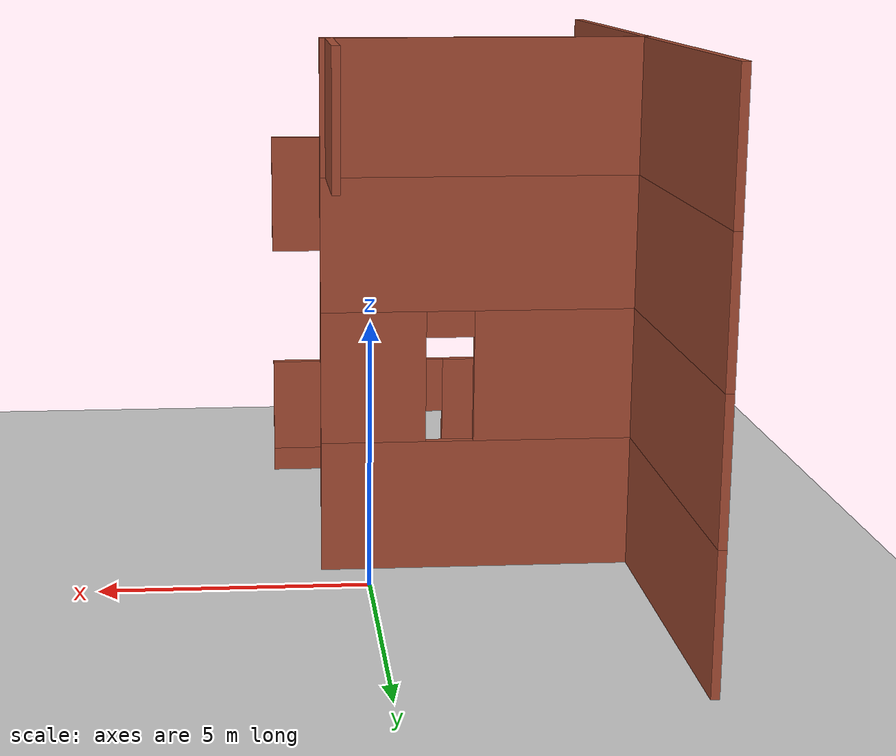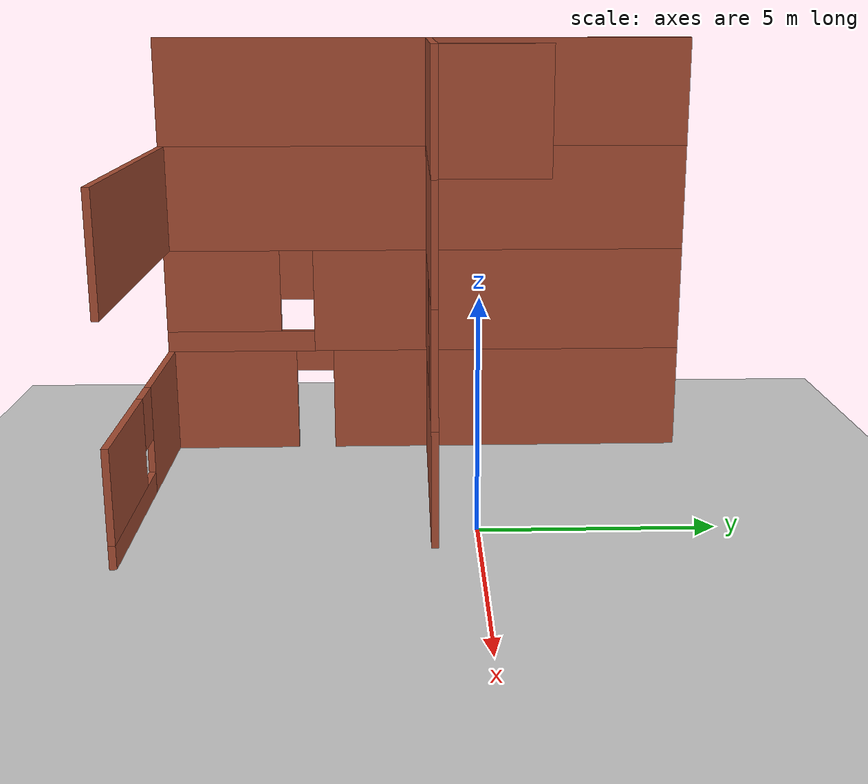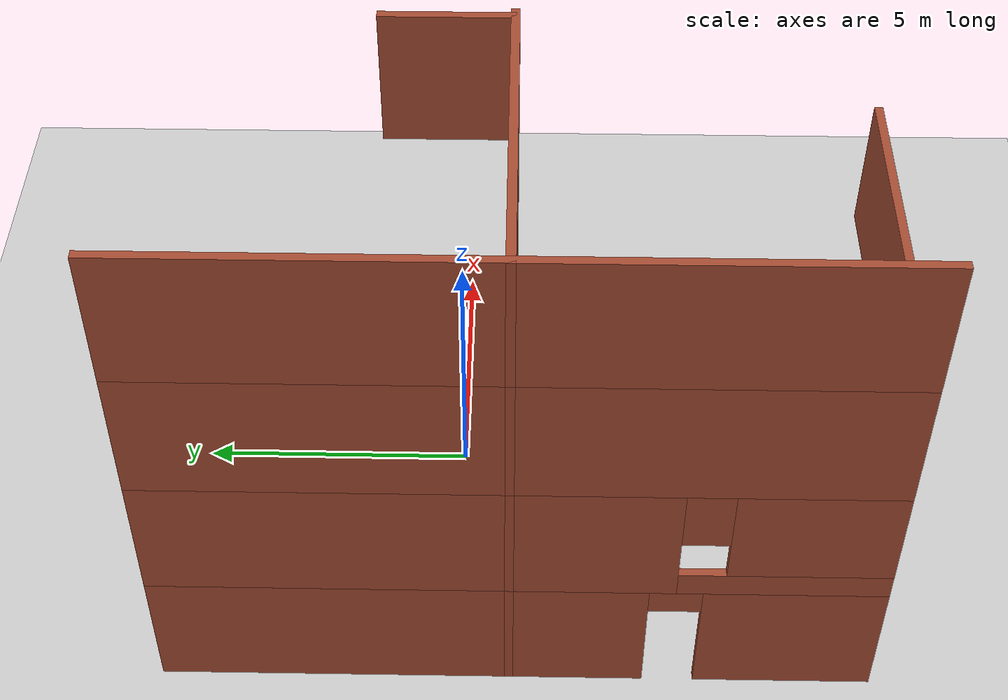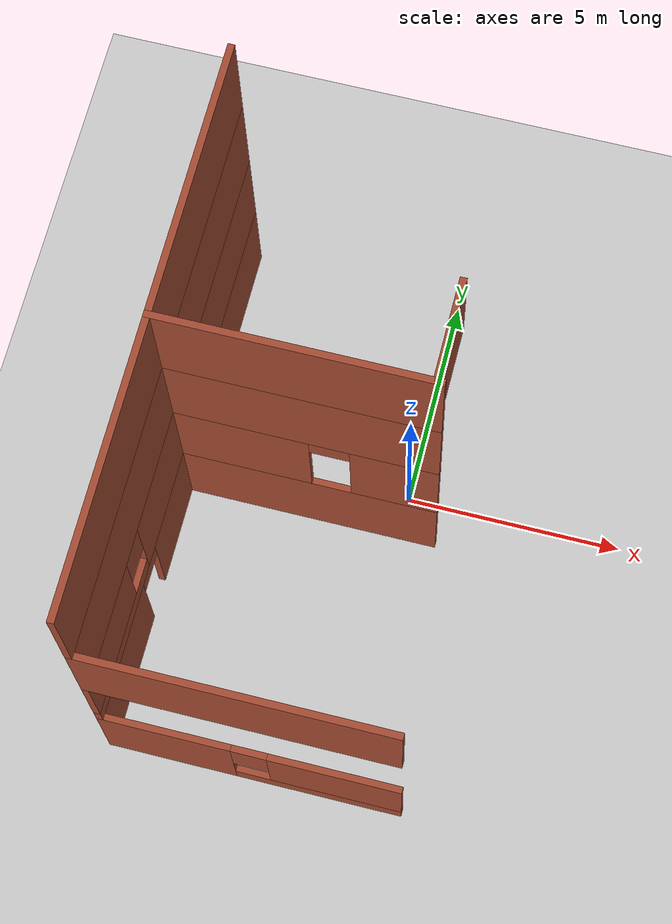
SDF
<sdf version="1.7">
 <world name="default">
  <model name="ground_plane">
   <static>1</static>
   <link name="link">
    <collision name="collision">
     <geometry><plane><normal>0 0 1</normal><size>300 300</size></plane></geometry>
     <surface>
      <contact><collide_bitmask>65535</collide_bitmask></contact>
      <friction><ode><mu>100</mu><mu2>50</mu2></ode></friction>
     </surface>
    </collision>
    <visual name="visual">
     <cast_shadows>0</cast_shadows>
     <geometry><plane><normal>0 0 1</normal><size>300 300</size></plane></geometry>
     <material>
      <script><uri>file://media/materials/scripts/gazebo.material</uri><name>Gazebo/Grey</name></script>
     </material>
    </visual>
   </link>
  </model>
  <model name="Drone_House">
   <pose>2.65602 -2.34694 0 0 -0 0</pose>
   <link name="Wall_106">
    <collision name="Wall_106_Collision">
     <geometry><box><size>12.5 0.15 2.5</size></box></geometry>
     <pose>0 0 1.25 0 -0 0</pose>
    </collision>
    <visual name="Wall_106_Visual">
     <pose>0 0 1.25 0 -0 0</pose>
     <geometry><box><size>12.5 0.15 2.5</size></box></geometry>
     <material>
      <script><uri>file://media/materials/scripts/gazebo.material</uri><name>Gazebo/Bricks</name></script>
      <ambient>1 1 1 1</ambient>
     </material>
     <meta><layer>3</layer></meta>
    </visual>
    <pose>-7.72394 1.325 7.5 0 -0 -1.5708</pose>
   </link>
   <link name="Wall_108">
    <collision name="Wall_108_Collision">
     <geometry><box><size>6 0.15 2.5</size></box></geometry>
     <pose>0 0 1.25 0 -0 0</pose>
    </collision>
    <visual name="Wall_108_Visual">
     <pose>0 0 1.25 0 -0 0</pose>
     <geometry><box><size>6 0.15 2.5</size></box></geometry>
     <material>
      <script><uri>file://media/materials/scripts/gazebo.material</uri><name>Gazebo/Bricks</name></script>
      <ambient>1 1 1 1</ambient>
     </material>
     <meta><layer>3</layer></meta>
    </visual>
    <pose>-4.80107 1.443 7.5 0 -0 0</pose>
   </link>
   <link name="Wall_115">
    <collision name="Wall_115_Collision">
     <geometry><box><size>2.25 0.15 2.5</size></box></geometry>
     <pose>0 0 1.25 0 -0 0</pose>
    </collision>
    <visual name="Wall_115_Visual">
     <pose>0 0 1.25 0 -0 0</pose>
     <geometry><box><size>2.25 0.15 2.5</size></box></geometry>
     <material>
      <script><uri>file://media/materials/scripts/gazebo.material</uri><name>Gazebo/Bricks</name></script>
      <ambient>1 1 1 1</ambient>
     </material>
     <meta><layer>3</layer></meta>
    </visual>
    <pose>-1.97394 2.55 7.5 0 -0 -1.5708</pose>
   </link>
   <link name="Wall_35">
    <pose>-7.72394 1.325 2.5 0 -0 -1.5708</pose>
    <visual name="Wall_35_Visual_0">
     <pose>-1.7824 0 1.25 0 -0 0</pose>
     <geometry><box><size>8.9352 0.15 2.5</size></box></geometry>
     <material>
      <script><uri>file://media/materials/scripts/gazebo.material</uri><name>Gazebo/Bricks</name></script>
      <ambient>1 1 1 1</ambient>
     </material>
     <meta><layer>1</layer></meta>
    </visual>
    <collision name="Wall_35_Collision_0">
     <geometry><box><size>8.9352 0.15 2.5</size></box></geometry>
     <pose>-1.7824 0 1.25 0 -0 0</pose>
    </collision>
    <visual name="Wall_35_Visual_1">
     <pose>4.4676 0 0.25 0 -0 0</pose>
     <geometry><box><size>3.5648 0.15 0.5</size></box></geometry>
     <material>
      <script><uri>file://media/materials/scripts/gazebo.material</uri><name>Gazebo/Bricks</name></script>
      <ambient>1 1 1 1</ambient>
     </material>
     <meta><layer>1</layer></meta>
    </visual>
    <collision name="Wall_35_Collision_1">
     <geometry><box><size>3.5648 0.15 0.5</size></box></geometry>
     <pose>4.4676 0 0.25 0 -0 0</pose>
    </collision>
    <visual name="Wall_35_Visual_2">
     <pose>4.8676 0 1.5 0 -0 0</pose>
     <geometry><box><size>2.7648 0.15 2</size></box></geometry>
     <material>
      <script><uri>file://media/materials/scripts/gazebo.material</uri><name>Gazebo/Bricks</name></script>
      <ambient>1 1 1 1</ambient>
     </material>
     <meta><layer>1</layer></meta>
    </visual>
    <collision name="Wall_35_Collision_2">
     <geometry><box><size>2.7648 0.15 2</size></box></geometry>
     <pose>4.8676 0 1.5 0 -0 0</pose>
    </collision>
    <visual name="Wall_35_Visual_3">
     <pose>3.0852 0 1.9 0 -0 0</pose>
     <geometry><box><size>0.8 0.15 1.2</size></box></geometry>
     <material>
      <script><uri>file://media/materials/scripts/gazebo.material</uri><name>Gazebo/Bricks</name></script>
      <ambient>1 1 1 1</ambient>
     </material>
     <meta><layer>1</layer></meta>
    </visual>
    <collision name="Wall_35_Collision_3">
     <geometry><box><size>0.8 0.15 1.2</size></box></geometry>
     <pose>3.0852 0 1.9 0 -0 0</pose>
    </collision>
   </link>
   <link name="Wall_37">
    <pose>-4.80107 1.443 2.5 0 -0 0</pose>
    <visual name="Wall_37_Visual_0">
     <pose>-1.43248 0 1.25 0 -0 0</pose>
     <geometry><box><size>3.13503 0.15 2.5</size></box></geometry>
     <material>
      <script><uri>file://media/materials/scripts/gazebo.material</uri><name>Gazebo/Bricks</name></script>
      <ambient>1 1 1 1</ambient>
     </material>
     <meta><layer>1</layer></meta>
    </visual>
    <collision name="Wall_37_Collision_0">
     <geometry><box><size>3.13503 0.15 2.5</size></box></geometry>
     <pose>-1.43248 0 1.25 0 -0 0</pose>
    </collision>
    <visual name="Wall_37_Visual_1">
     <pose>2.01752 0 1.25 0 -0 0</pose>
     <geometry><box><size>1.96497 0.15 2.5</size></box></geometry>
     <material>
      <script><uri>file://media/materials/scripts/gazebo.material</uri><name>Gazebo/Bricks</name></script>
      <ambient>1 1 1 1</ambient>
     </material>
     <meta><layer>1</layer></meta>
    </visual>
    <collision name="Wall_37_Collision_1">
     <geometry><box><size>1.96497 0.15 2.5</size></box></geometry>
     <pose>2.01752 0 1.25 0 -0 0</pose>
    </collision>
    <visual name="Wall_37_Visual_2">
     <pose>0.585032 0 2.25 0 -0 0</pose>
     <geometry><box><size>0.9 0.15 0.5</size></box></geometry>
     <material>
      <script><uri>file://media/materials/scripts/gazebo.material</uri><name>Gazebo/Bricks</name></script>
      <ambient>1 1 1 1</ambient>
     </material>
     <meta><layer>1</layer></meta>
    </visual>
    <collision name="Wall_37_Collision_2">
     <geometry><box><size>0.9 0.15 0.5</size></box></geometry>
     <pose>0.585032 0 2.25 0 -0 0</pose>
    </collision>
   </link>
   <link name="Wall_4">
    <pose>-7.72394 1.325 0 0 -0 -1.5708</pose>
    <visual name="Wall_4_Visual_0">
     <pose>-2.0069 0 1.25 0 -0 0</pose>
     <geometry><box><size>8.4862 0.15 2.5</size></box></geometry>
     <material>
      <script><uri>file://media/materials/scripts/gazebo.material</uri><name>Gazebo/Bricks</name></script>
      <ambient>1 1 1 1</ambient>
     </material>
     <meta><layer>0</layer></meta>
    </visual>
    <collision name="Wall_4_Collision_0">
     <geometry><box><size>8.4862 0.15 2.5</size></box></geometry>
     <pose>-2.0069 0 1.25 0 -0 0</pose>
    </collision>
    <visual name="Wall_4_Visual_1">
     <pose>4.6931 0 1.25 0 -0 0</pose>
     <geometry><box><size>3.1138 0.15 2.5</size></box></geometry>
     <material>
      <script><uri>file://media/materials/scripts/gazebo.material</uri><name>Gazebo/Bricks</name></script>
      <ambient>1 1 1 1</ambient>
     </material>
     <meta><layer>0</layer></meta>
    </visual>
    <collision name="Wall_4_Collision_1">
     <geometry><box><size>3.1138 0.15 2.5</size></box></geometry>
     <pose>4.6931 0 1.25 0 -0 0</pose>
    </collision>
    <visual name="Wall_4_Visual_2">
     <pose>2.6862 0 2.25 0 -0 0</pose>
     <geometry><box><size>0.9 0.15 0.5</size></box></geometry>
     <material>
      <script><uri>file://media/materials/scripts/gazebo.material</uri><name>Gazebo/Bricks</name></script>
      <ambient>1 1 1 1</ambient>
     </material>
     <meta><layer>0</layer></meta>
    </visual>
    <collision name="Wall_4_Collision_2">
     <geometry><box><size>0.9 0.15 0.5</size></box></geometry>
     <pose>2.6862 0 2.25 0 -0 0</pose>
    </collision>
   </link>
   <link name="Wall_5">
    <pose>-4.42394 -4.85 0 0 -0 0</pose>
    <visual name="Wall_5_Visual_0">
     <pose>-1.88995 0 1.25 0 -0 0</pose>
     <geometry><box><size>2.9701 0.15 2.5</size></box></geometry>
     <material>
      <script><uri>file://media/materials/scripts/gazebo.material</uri><name>Gazebo/Bricks</name></script>
      <ambient>1 1 1 1</ambient>
     </material>
     <meta><layer>0</layer></meta>
    </visual>
    <collision name="Wall_5_Collision_0">
     <geometry><box><size>2.9701 0.15 2.5</size></box></geometry>
     <pose>-1.88995 0 1.25 0 -0 0</pose>
    </collision>
    <visual name="Wall_5_Visual_1">
     <pose>1.48505 0 0.25 0 -0 0</pose>
     <geometry><box><size>3.7799 0.15 0.5</size></box></geometry>
     <material>
      <script><uri>file://media/materials/scripts/gazebo.material</uri><name>Gazebo/Bricks</name></script>
      <ambient>1 1 1 1</ambient>
     </material>
     <meta><layer>0</layer></meta>
    </visual>
    <collision name="Wall_5_Collision_1">
     <geometry><box><size>3.7799 0.15 0.5</size></box></geometry>
     <pose>1.48505 0 0.25 0 -0 0</pose>
    </collision>
    <visual name="Wall_5_Visual_2">
     <pose>1.88505 0 1.5 0 -0 0</pose>
     <geometry><box><size>2.9799 0.15 2</size></box></geometry>
     <material>
      <script><uri>file://media/materials/scripts/gazebo.material</uri><name>Gazebo/Bricks</name></script>
      <ambient>1 1 1 1</ambient>
     </material>
     <meta><layer>0</layer></meta>
    </visual>
    <collision name="Wall_5_Collision_2">
     <geometry><box><size>2.9799 0.15 2</size></box></geometry>
     <pose>1.88505 0 1.5 0 -0 0</pose>
    </collision>
    <visual name="Wall_5_Visual_3">
     <pose>-0.004899 0 1.9 0 -0 0</pose>
     <geometry><box><size>0.8 0.15 1.2</size></box></geometry>
     <material>
      <script><uri>file://media/materials/scripts/gazebo.material</uri><name>Gazebo/Bricks</name></script>
      <ambient>1 1 1 1</ambient>
     </material>
     <meta><layer>0</layer></meta>
    </visual>
    <collision name="Wall_5_Collision_3">
     <geometry><box><size>0.8 0.15 1.2</size></box></geometry>
     <pose>-0.004899 0 1.9 0 -0 0</pose>
    </collision>
   </link>
   <link name="Wall_7">
    <collision name="Wall_7_Collision">
     <geometry><box><size>6 0.15 2.5</size></box></geometry>
     <pose>0 0 1.25 0 -0 0</pose>
    </collision>
    <visual name="Wall_7_Visual">
     <pose>0 0 1.25 0 -0 0</pose>
     <geometry><box><size>6 0.15 2.5</size></box></geometry>
     <material>
      <script><uri>file://media/materials/scripts/gazebo.material</uri><name>Gazebo/Bricks</name></script>
      <ambient>1 1 1 1</ambient>
     </material>
     <meta><layer>0</layer></meta>
    </visual>
    <pose>-4.80107 1.443 0 0 -0 0</pose>
   </link>
   <link name="Wall_84">
    <collision name="Wall_84_Collision">
     <geometry><box><size>12.5 0.15 2.5</size></box></geometry>
     <pose>0 0 1.25 0 -0 0</pose>
    </collision>
    <visual name="Wall_84_Visual">
     <pose>0 0 1.25 0 -0 0</pose>
     <geometry><box><size>12.5 0.15 2.5</size></box></geometry>
     <material>
      <script><uri>file://media/materials/scripts/gazebo.material</uri><name>Gazebo/Bricks</name></script>
      <ambient>1 1 1 1</ambient>
     </material>
     <meta><layer>2</layer></meta>
    </visual>
    <pose>-7.72394 1.325 5 0 -0 -1.5708</pose>
   </link>
   <link name="Wall_85">
    <collision name="Wall_85_Collision">
     <geometry><box><size>6.75 0.15 2.5</size></box></geometry>
     <pose>0 0 1.25 0 -0 0</pose>
    </collision>
    <visual name="Wall_85_Visual">
     <pose>0 0 1.25 0 -0 0</pose>
     <geometry><box><size>6.75 0.15 2.5</size></box></geometry>
     <material>
      <script><uri>file://media/materials/scripts/gazebo.material</uri><name>Gazebo/Bricks</name></script>
      <ambient>1 1 1 1</ambient>
     </material>
     <meta><layer>2</layer></meta>
    </visual>
    <pose>-4.42394 -4.85 5 0 -0 0</pose>
   </link>
   <link name="Wall_86">
    <collision name="Wall_86_Collision">
     <geometry><box><size>6 0.15 2.5</size></box></geometry>
     <pose>0 0 1.25 0 -0 0</pose>
    </collision>
    <visual name="Wall_86_Visual">
     <pose>0 0 1.25 0 -0 0</pose>
     <geometry><box><size>6 0.15 2.5</size></box></geometry>
     <material>
      <script><uri>file://media/materials/scripts/gazebo.material</uri><name>Gazebo/Bricks</name></script>
      <ambient>1 1 1 1</ambient>
     </material>
     <meta><layer>2</layer></meta>
    </visual>
    <pose>-4.80107 1.443 5 0 -0 0</pose>
   </link>
   <static>1</static>
  </model>
 </world>
</sdf>
